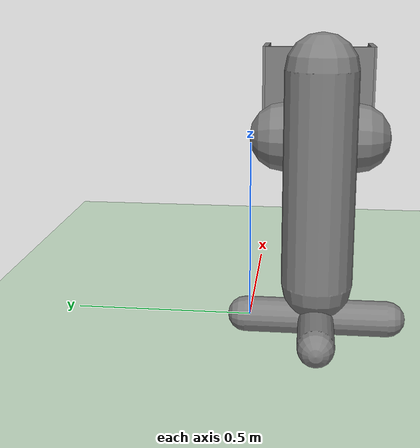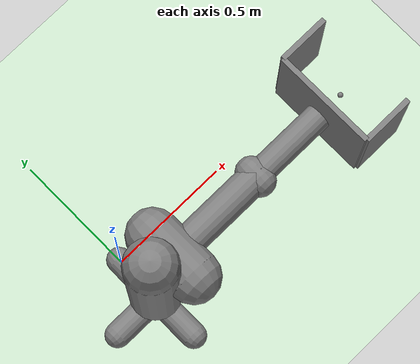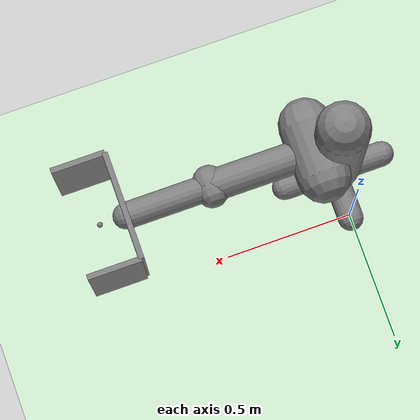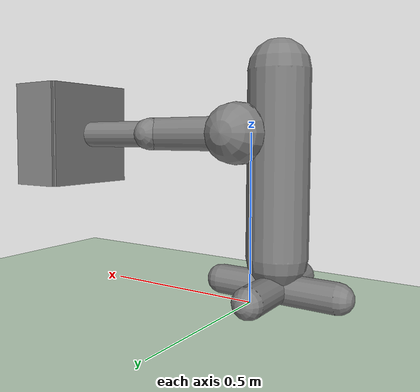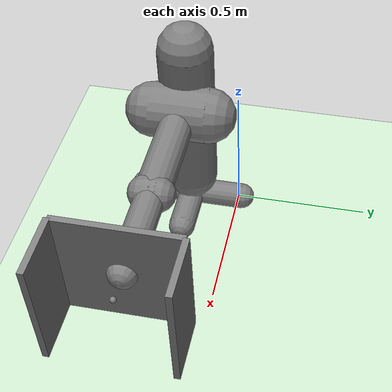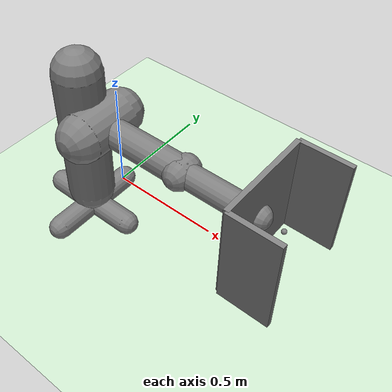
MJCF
<mujoco model="mobile_manipulation">
    <compiler inertiafromgeom="true" angle="radian" coordinate="local" />
    <custom>
      <numeric name="frame_skip" data="50" />
    </custom>
    <option timestep="0.001" gravity="0 0 0" iterations="1000" integrator="Euler" />
    <default>
        <joint armature="0.04" damping="10" limited="true" />
        <geom friction=".5 .1 .1" margin="0.002" condim="1" contype="0" conaffinity="0" />
    </default>
    <asset>
      <texture type="skybox" builtin="gradient" width="100" height="100" rgb1="1 1 1" rgb2="0 0 0" />
      <texture name="texgeom" type="cube" builtin="flat" mark="cross" width="127" height="1278" rgb1="0.8 0.6 0.4" rgb2="0.8 0.6 0.4" markrgb="1 1 1" random="0.01" />
      <texture name="texplane" type="2d" builtin="checker" rgb1="0 0 0" rgb2="0.8 0.8 0.8" width="100" height="100" />
      <material name='MatPlane' texture="texplane" shininess="1" texrepeat="30 30" specular="1"  reflectance="0.5" />
      <material name='geom' texture="texgeom" texuniform="true" />
    </asset>

  <worldbody>
    <light directional="true" cutoff="100" exponent="1" diffuse="1 1 1" specular=".1 .1 .1" pos="0 0 1.3" dir="-0 0 -1.3" />
    <geom name='floor' material="MatPlane" pos='0 0 -0.1' size='40 40 0.1' type='plane' conaffinity='1' rgba='0.8 0.9 0.8 1' condim='3' />
    <!--  ================= SWIMMER ================= /-->

    <body name="torso" pos="0 -0.188 0.5">
       <joint name="base_x" type="slide" pos="0 0 -0.5" axis="1 0 0" range="-200.2854 200.714602" limited="true" />
       <joint name="base_y" type="slide" pos="0 0 -0.5" axis="0 1 0" range="-200.2854 200.714602" limited="true" />

        <geom name="torso" type="capsule" fromto="0 0 -0.4 0 0 0.2" size="0.1" />
        <geom name="sp1" type="capsule" fromto="-0.2 0 -0.5 0.2 0 -0.5" size="0.05" />
        <geom name="sp2" type="capsule" fromto="0 -0.2 -0.5 0 0.2 -0.5" size="0.05" />
        <joint name="r_shoulder_pan_joint" type="hinge" pos="0 0 0" axis="0 0 1" range="-2.2854 1.714602" damping="100.0" />

        <body name="r_shoulder_lift_link" pos="0.1 0 0">
            <geom name="sl" type="capsule" fromto="0 -0.1 0 0 0.1 0" size="0.1" />
            <joint name="r_shoulder_lift_joint" type="hinge" pos="0 0 0" axis="0 1 0" range="-0.5236 1.3963" damping="100.0" />

            <body name="r_upper_arm_roll_link" pos="0 0 0">
                <geom name="uar" type="capsule" fromto="-0.1 0 0 0.1 0 0" size="0.02" />
                <joint name="r_upper_arm_roll_joint" type="hinge" pos="0 0 0" axis="1 0 0" range="-3.9 0.8" damping="1" />

                <body name="r_upper_arm_link" pos="0 0 0">
                    <geom name="ua" type="capsule" fromto="0 0 0 0.4 0 0" size="0.06" />

                    <body name="r_elbow_flex_link" pos="0.4 0 0">
                        <geom name="ef" type="capsule" fromto="0 -0.02 0 0.0 0.02 0" size="0.06" />
                        <joint name="r_elbow_flex_joint" type="hinge" pos="0 0 0" axis="0 1 0" range="-2.3213 0" damping="10.0" />

                        <body name="r_forearm_roll_link" pos="0 0 0">
                            <geom name="fr" type="capsule" fromto="-0.1 0 0 0.1 0 0" size="0.02" />
                            <joint name="r_forearm_roll_joint" type="hinge" limited="false" pos="0 0 0" axis="1 0 0" damping="1" />

                            <body name="r_forearm_link" pos="0 0 0">
                                <geom name="fa" type="capsule" fromto="0 0 0 0.321 0 0" size="0.05" />

                                <body name="r_wrist_flex_link" pos="0.321 0 0">
                                    <geom name="wf" type="capsule" fromto="0 -0.02 0 0 0.02 0" size="0.01" />
                                    <joint name="r_wrist_flex_joint" type="hinge" pos="0 0 0" axis="0 1 0" range="-2.094 0" damping="1" />

                                    <body name="r_wrist_roll_link" pos="0 0 0">
                                        <geom name="wr" type="capsule" fromto="-0.02 0 0 0.02 0 0" size="0.01" />
                                        <joint name="r_wrist_roll_joint" type="hinge" pos="0 0 0" limited="false" axis="1 0 0" damping="1" />

                                        <body name="r_gripper_palm_link" pos="0 0 0">
                                            <site name="gripper_pos" pos="0.1 0 0" size="0.01" />
                                            <geom name="backbox" type="box" size="0.01 0.2 0.2"/>
                                            <geom name="leftbox" type="box" pos="0.1 0.2 0" size="0.1 0.01 0.2"/>
                                            <geom name="rightbox" type="box" pos="0.1 -0.2 0" size="0.1 0.01 0.2"/>
                                        </body>
                                    </body>
                                </body>
                            </body>
                        </body>
                    </body>
                </body>
            </body>
        </body>
    </body>

  </worldbody>
  <actuator>
    <motor joint="base_x" ctrlrange="-2.0 2.0" ctrllimited="true" />
    <motor joint="base_y" ctrlrange="-2.0 2.0" ctrllimited="true" />
    <motor joint="r_shoulder_pan_joint" ctrlrange="-10.0 10.0" ctrllimited="true" />
    <motor joint="r_shoulder_lift_joint" ctrlrange="-10.0 10.0" ctrllimited="true" />
    <motor joint="r_upper_arm_roll_joint" ctrlrange="-10.0 10.0" ctrllimited="true" />
    <motor joint="r_elbow_flex_joint" ctrlrange="-10.0 10.0" ctrllimited="true" />
    <motor joint="r_forearm_roll_joint" ctrlrange="-10.0 10.0" ctrllimited="true" />
    <motor joint="r_wrist_flex_joint" ctrlrange="-10.0 10.0" ctrllimited="true" />
    <motor joint="r_wrist_roll_joint" ctrlrange="-10.0 10.0" ctrllimited="true" />
  </actuator>
</mujoco>
